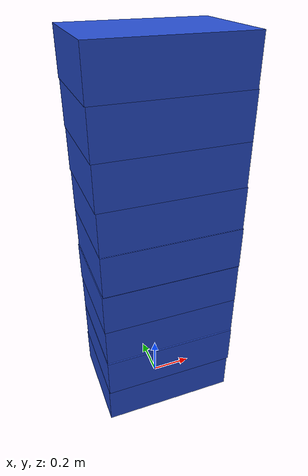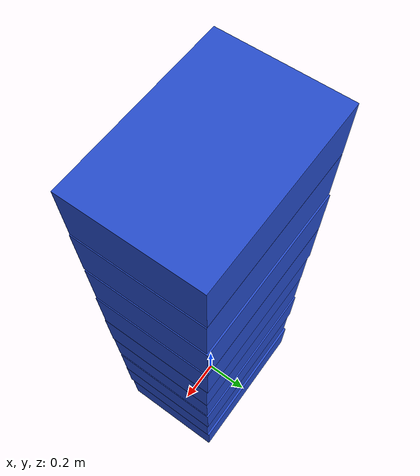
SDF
<?xml version="1.0" encoding="UTF-8"?>
<sdf version='1.4'>
   <model name="baggage_B_x9">
      <model name="baggage_B_0">
         <static>true</static>
         <link name="link">
               <collision name="collision">
                  <geometry>
                     <box>
                        <size>0.65 0.45 0.2</size>
                     </box>
                  </geometry>
               </collision>
               <visual name="visual">
                  <geometry>
                     <box>
                        <size>0.65 0.45 0.2</size>
                     </box>
                  </geometry>
                  <material>
                     <script>
                        <uri>file://media/materials/scripts/gazebo.material</uri>
                        <name>Gazebo/Blue</name>
                     </script>
                  </material>
               </visual>
            </link>
            <pose frame=''>0 0 0.1 0 0 0</pose>
      </model>
      <model name="baggage_B_1">
         <static>true</static>
         <link name="link">
               <collision name="collision">
                  <geometry>
                     <box>
                        <size>0.65 0.45 0.2</size>
                     </box>
                  </geometry>
               </collision>
               <visual name="visual">
                  <geometry>
                     <box>
                        <size>0.65 0.45 0.2</size>
                     </box>
                  </geometry>
                  <material>
                     <script>
                        <uri>file://media/materials/scripts/gazebo.material</uri>
                        <name>Gazebo/Blue</name>
                     </script>
                  </material>
               </visual>
            </link>
            <pose frame=''>0.0010 -0.0095 0.3 0 0 0</pose>
      </model>
      <model name="baggage_B_2">
         <static>true</static>
         <link name="link">
               <collision name="collision">
                  <geometry>
                     <box>
                        <size>0.65 0.45 0.2</size>
                     </box>
                  </geometry>
               </collision>
               <visual name="visual">
                  <geometry>
                     <box>
                        <size>0.65 0.45 0.2</size>
                     </box>
                  </geometry>
                  <material>
                     <script>
                        <uri>file://media/materials/scripts/gazebo.material</uri>
                        <name>Gazebo/Blue</name>
                     </script>
                  </material>
               </visual>
            </link>
            <pose frame=''>0.0028 -0.0029 0.5 0 0 0</pose>
      </model>
      <model name="baggage_B_3">
         <static>true</static>
         <link name="link">
               <collision name="collision">
                  <geometry>
                     <box>
                        <size>0.65 0.45 0.2</size>
                     </box>
                  </geometry>
               </collision>
               <visual name="visual">
                  <geometry>
                     <box>
                        <size>0.65 0.45 0.2</size>
                     </box>
                  </geometry>
                  <material>
                     <script>
                        <uri>file://media/materials/scripts/gazebo.material</uri>
                        <name>Gazebo/Blue</name>
                     </script>
                  </material>
               </visual>
            </link>
            <pose frame=''>-0.0004 -0.0089 0.7 0 0 0</pose>
      </model>
      <model name="baggage_B_4">
         <static>true</static>
         <link name="link">
               <collision name="collision">
                  <geometry>
                     <box>
                        <size>0.65 0.45 0.2</size>
                     </box>
                  </geometry>
               </collision>
               <visual name="visual">
                  <geometry>
                     <box>
                        <size>0.65 0.45 0.2</size>
                     </box>
                  </geometry>
                  <material>
                     <script>
                        <uri>file://media/materials/scripts/gazebo.material</uri>
                        <name>Gazebo/Blue</name>
                     </script>
                  </material>
               </visual>
            </link>
            <pose frame=''>0.0034 -0.0062 0.9 0 0 0</pose>
      </model>
      <model name="baggage_B_5">
         <static>true</static>
         <link name="link">
               <collision name="collision">
                  <geometry>
                     <box>
                        <size>0.65 0.45 0.2</size>
                     </box>
                  </geometry>
               </collision>
               <visual name="visual">
                  <geometry>
                     <box>
                        <size>0.65 0.45 0.2</size>
                     </box>
                  </geometry>
                  <material>
                     <script>
                        <uri>file://media/materials/scripts/gazebo.material</uri>
                        <name>Gazebo/Blue</name>
                     </script>
                  </material>
               </visual>
            </link>
            <pose frame=''>0.0037 -0.0012 1.1 0 0 0</pose>
      </model>
      <model name="baggage_B_6">
         <static>true</static>
         <link name="link">
               <collision name="collision">
                  <geometry>
                     <box>
                        <size>0.65 0.45 0.2</size>
                     </box>
                  </geometry>
               </collision>
               <visual name="visual">
                  <geometry>
                     <box>
                        <size>0.65 0.45 0.2</size>
                     </box>
                  </geometry>
                  <material>
                     <script>
                        <uri>file://media/materials/scripts/gazebo.material</uri>
                        <name>Gazebo/Blue</name>
                     </script>
                  </material>
               </visual>
            </link>
            <pose frame=''>0 -0.0018 1.3 0 0 0</pose>
      </model>
      <model name="baggage_B_7">
         <static>true</static>
         <link name="link">
               <collision name="collision">
                  <geometry>
                     <box>
                        <size>0.65 0.45 0.2</size>
                     </box>
                  </geometry>
               </collision>
               <visual name="visual">
                  <geometry>
                     <box>
                        <size>0.65 0.45 0.2</size>
                     </box>
                  </geometry>
                  <material>
                     <script>
                        <uri>file://media/materials/scripts/gazebo.material</uri>
                        <name>Gazebo/Blue</name>
                     </script>
                  </material>
               </visual>
            </link>
            <pose frame=''>-0.0036 -0.0074 1.5 0 0 0</pose>
      </model>
      <model name="baggage_B_8">
         <static>true</static>
         <link name="link">
               <collision name="collision">
                  <geometry>
                     <box>
                        <size>0.65 0.45 0.2</size>
                     </box>
                  </geometry>
               </collision>
               <visual name="visual">
                  <geometry>
                     <box>
                        <size>0.65 0.45 0.2</size>
                     </box>
                  </geometry>
                  <material>
                     <script>
                        <uri>file://media/materials/scripts/gazebo.material</uri>
                        <name>Gazebo/Blue</name>
                     </script>
                  </material>
               </visual>
            </link>
            <pose frame=''>-0.0068 -0.0081 1.7 0 0 0</pose>
      </model>
   </model>
</sdf>
